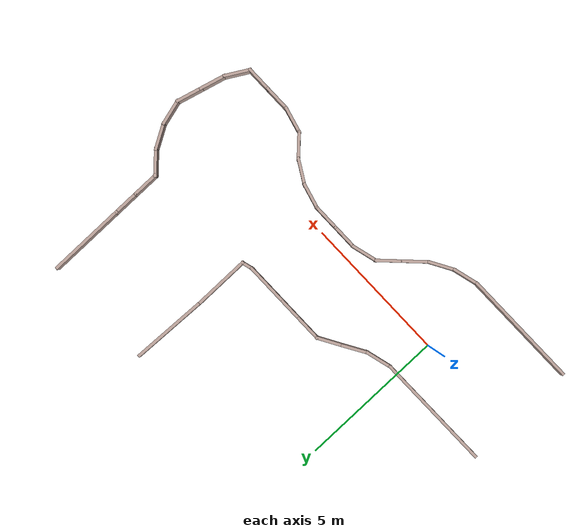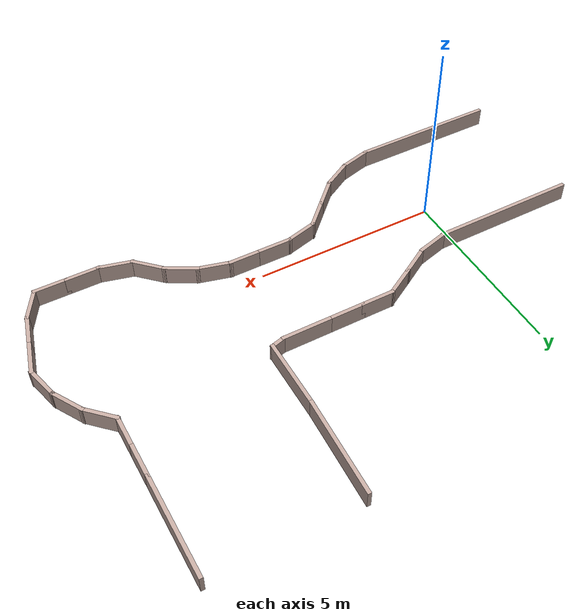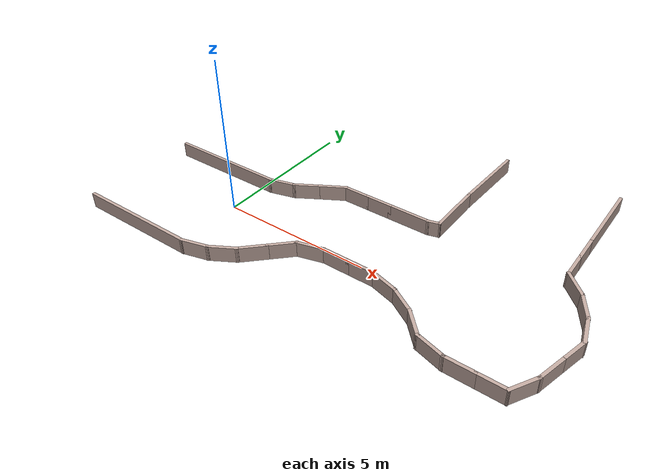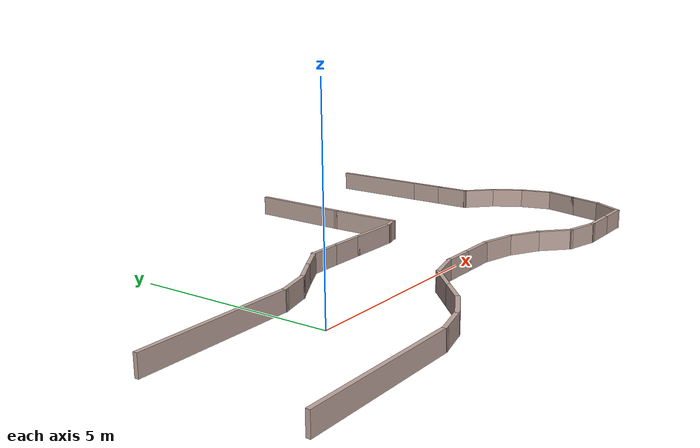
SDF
<?xml version='1.0'?>
<sdf version='1.7'>
  <model name='Autonomous'>
    <pose>3.83779 2.21924 0 0 -0 0</pose>
    <link name='Wall_0'>
      <collision name='Wall_0_Collision'>
        <geometry>
          <box>
            <size>4.0805 0.1 0.5</size>
          </box>
        </geometry>
        <pose>0 0 0.25 0 -0 0</pose>
      </collision>
      <visual name='Wall_0_Visual'>
        <pose>0 0 0.25 0 -0 0</pose>
        <geometry>
          <box>
            <size>4.0805 0.1 0.5</size>
          </box>
        </geometry>
        <material>
          <script>
            <uri>file://media/materials/scripts/gazebo.material</uri>
            <name>Gazebo/Grey</name>
          </script>
          <ambient>0.760784 0.662745 0.627451 1</ambient>
        </material>
        <meta>
          <layer>0</layer>
        </meta>
      </visual>
      <pose>-5.41802 -4.7193 0 0 -0 0.005053</pose>
    </link>
    <link name='Wall_10'>
      <collision name='Wall_10_Collision'>
        <geometry>
          <box>
            <size>0.95 0.1 0.5</size>
          </box>
        </geometry>
        <pose>0 0 0.25 0 -0 0</pose>
      </collision>
      <visual name='Wall_10_Visual'>
        <pose>0 0 0.25 0 -0 0</pose>
        <geometry>
          <box>
            <size>0.95 0.1 0.5</size>
          </box>
        </geometry>
        <material>
          <script>
            <uri>file://media/materials/scripts/gazebo.material</uri>
            <name>Gazebo/Grey</name>
          </script>
          <ambient>0.760784 0.662745 0.627451 1</ambient>
        </material>
        <meta>
          <layer>0</layer>
        </meta>
      </visual>
      <pose>1.42721 -2.64224 0 0 -0 0</pose>
    </link>
    <link name='Wall_11'>
      <collision name='Wall_11_Collision'>
        <geometry>
          <box>
            <size>0.950248 0.1 0.5</size>
          </box>
        </geometry>
        <pose>0 0 0.25 0 -0 0</pose>
      </collision>
      <visual name='Wall_11_Visual'>
        <pose>0 0 0.25 0 -0 0</pose>
        <geometry>
          <box>
            <size>0.950248 0.1 0.5</size>
          </box>
        </geometry>
        <material>
          <script>
            <uri>file://media/materials/scripts/gazebo.material</uri>
            <name>Gazebo/Grey</name>
          </script>
          <ambient>0.760784 0.662745 0.627451 1</ambient>
        </material>
        <meta>
          <layer>0</layer>
        </meta>
      </visual>
      <pose>2.26271 -2.75224 0 0 -0 -0.261815</pose>
    </link>
    <link name='Wall_12'>
      <collision name='Wall_12_Collision'>
        <geometry>
          <box>
            <size>0.950233 0.1 0.5</size>
          </box>
        </geometry>
        <pose>0 0 0.25 0 -0 0</pose>
      </collision>
      <visual name='Wall_12_Visual'>
        <pose>0 0 0.25 0 -0 0</pose>
        <geometry>
          <box>
            <size>0.950233 0.1 0.5</size>
          </box>
        </geometry>
        <material>
          <script>
            <uri>file://media/materials/scripts/gazebo.material</uri>
            <name>Gazebo/Grey</name>
          </script>
          <ambient>0.760784 0.662745 0.627451 1</ambient>
        </material>
        <meta>
          <layer>0</layer>
        </meta>
      </visual>
      <pose>3.04121 -3.07474 0 0 -0 -0.52367</pose>
    </link>
    <link name='Wall_13'>
      <collision name='Wall_13_Collision'>
        <geometry>
          <box>
            <size>0.950253 0.1 0.5</size>
          </box>
        </geometry>
        <pose>0 0 0.25 0 -0 0</pose>
      </collision>
      <visual name='Wall_13_Visual'>
        <pose>0 0 0.25 0 -0 0</pose>
        <geometry>
          <box>
            <size>0.950253 0.1 0.5</size>
          </box>
        </geometry>
        <material>
          <script>
            <uri>file://media/materials/scripts/gazebo.material</uri>
            <name>Gazebo/Grey</name>
          </script>
          <ambient>0.760784 0.662745 0.627451 1</ambient>
        </material>
        <meta>
          <layer>0</layer>
        </meta>
      </visual>
      <pose>3.70971 -3.58774 0 0 -0 -0.785398</pose>
    </link>
    <link name='Wall_14'>
      <collision name='Wall_14_Collision'>
        <geometry>
          <box>
            <size>0.970267 0.1 0.5</size>
          </box>
        </geometry>
        <pose>0 0 0.25 0 -0 0</pose>
      </collision>
      <visual name='Wall_14_Visual'>
        <pose>0 0 0.25 0 -0 0</pose>
        <geometry>
          <box>
            <size>0.970267 0.1 0.5</size>
          </box>
        </geometry>
        <material>
          <script>
            <uri>file://media/materials/scripts/gazebo.material</uri>
            <name>Gazebo/Grey</name>
          </script>
          <ambient>0.760784 0.662745 0.627451 1</ambient>
        </material>
        <meta>
          <layer>0</layer>
        </meta>
      </visual>
      <pose>4.43121 -3.99824 0 0 -0 -0.255569</pose>
    </link>
    <link name='Wall_15'>
      <collision name='Wall_15_Collision'>
        <geometry>
          <box>
            <size>0.949627 0.1 0.5</size>
          </box>
        </geometry>
        <pose>0 0 0.25 0 -0 0</pose>
      </collision>
      <visual name='Wall_15_Visual'>
        <pose>0 0 0.25 0 -0 0</pose>
        <geometry>
          <box>
            <size>0.949627 0.1 0.5</size>
          </box>
        </geometry>
        <material>
          <script>
            <uri>file://media/materials/scripts/gazebo.material</uri>
            <name>Gazebo/Grey</name>
          </script>
          <ambient>0.760784 0.662745 0.627451 1</ambient>
        </material>
        <meta>
          <layer>0</layer>
        </meta>
      </visual>
      <pose>5.27721 -4.10824 0 0 -0 0</pose>
    </link>
    <link name='Wall_16'>
      <collision name='Wall_16_Collision'>
        <geometry>
          <box>
            <size>0.929513 0.1 0.5</size>
          </box>
        </geometry>
        <pose>0 0 0.25 0 -0 0</pose>
      </collision>
      <visual name='Wall_16_Visual'>
        <pose>0 0 0.25 0 -0 0</pose>
        <geometry>
          <box>
            <size>0.929513 0.1 0.5</size>
          </box>
        </geometry>
        <material>
          <script>
            <uri>file://media/materials/scripts/gazebo.material</uri>
            <name>Gazebo/Grey</name>
          </script>
          <ambient>0.760784 0.662745 0.627451 1</ambient>
        </material>
        <meta>
          <layer>0</layer>
        </meta>
      </visual>
      <pose>6.11721 -4.10824 0 0 -0 0</pose>
    </link>
    <link name='Wall_18'>
      <collision name='Wall_18_Collision'>
        <geometry>
          <box>
            <size>0.949792 0.1 0.5</size>
          </box>
        </geometry>
        <pose>0 0 0.25 0 -0 0</pose>
      </collision>
      <visual name='Wall_18_Visual'>
        <pose>0 0 0.25 0 -0 0</pose>
        <geometry>
          <box>
            <size>0.949792 0.1 0.5</size>
          </box>
        </geometry>
        <material>
          <script>
            <uri>file://media/materials/scripts/gazebo.material</uri>
            <name>Gazebo/Grey</name>
          </script>
          <ambient>0.760784 0.662745 0.627451 1</ambient>
        </material>
        <meta>
          <layer>0</layer>
        </meta>
      </visual>
      <pose>6.74471 -3.74024 0 0 -0 1.04713</pose>
    </link>
    <link name='Wall_19'>
      <collision name='Wall_19_Collision'>
        <geometry>
          <box>
            <size>0.950031 0.1 0.5</size>
          </box>
        </geometry>
        <pose>0 0 0.25 0 -0 0</pose>
      </collision>
      <visual name='Wall_19_Visual'>
        <pose>0 0 0.25 0 -0 0</pose>
        <geometry>
          <box>
            <size>0.950031 0.1 0.5</size>
          </box>
        </geometry>
        <material>
          <script>
            <uri>file://media/materials/scripts/gazebo.material</uri>
            <name>Gazebo/Grey</name>
          </script>
          <ambient>0.760784 0.662745 0.627451 1</ambient>
        </material>
        <meta>
          <layer>0</layer>
        </meta>
      </visual>
      <pose>7.06721 -2.96174 0 0 -0 1.30898</pose>
    </link>
    <link name='Wall_20'>
      <collision name='Wall_20_Collision'>
        <geometry>
          <box>
            <size>0.950066 0.1 0.5</size>
          </box>
        </geometry>
        <pose>0 0 0.25 0 -0 0</pose>
      </collision>
      <visual name='Wall_20_Visual'>
        <pose>0 0 0.25 0 -0 0</pose>
        <geometry>
          <box>
            <size>0.950066 0.1 0.5</size>
          </box>
        </geometry>
        <material>
          <script>
            <uri>file://media/materials/scripts/gazebo.material</uri>
            <name>Gazebo/Grey</name>
          </script>
          <ambient>0.760784 0.662745 0.627451 1</ambient>
        </material>
        <meta>
          <layer>0</layer>
        </meta>
      </visual>
      <pose>7.28721 -2.14074 0 0 -0 1.30898</pose>
    </link>
    <link name='Wall_21'>
      <collision name='Wall_21_Collision'>
        <geometry>
          <box>
            <size>0.950356 0.1 0.5</size>
          </box>
        </geometry>
        <pose>0 0 0.25 0 -0 0</pose>
      </collision>
      <visual name='Wall_21_Visual'>
        <pose>0 0 0.25 0 -0 0</pose>
        <geometry>
          <box>
            <size>0.950356 0.1 0.5</size>
          </box>
        </geometry>
        <material>
          <script>
            <uri>file://media/materials/scripts/gazebo.material</uri>
            <name>Gazebo/Grey</name>
          </script>
          <ambient>0.760784 0.662745 0.627451 1</ambient>
        </material>
        <meta>
          <layer>0</layer>
        </meta>
      </visual>
      <pose>7.28721 -1.31974 0 0 -0 1.83261</pose>
    </link>
    <link name='Wall_22'>
      <collision name='Wall_22_Collision'>
        <geometry>
          <box>
            <size>0.950482 0.1 0.5</size>
          </box>
        </geometry>
        <pose>0 0 0.25 0 -0 0</pose>
      </collision>
      <visual name='Wall_22_Visual'>
        <pose>0 0 0.25 0 -0 0</pose>
        <geometry>
          <box>
            <size>0.950482 0.1 0.5</size>
          </box>
        </geometry>
        <material>
          <script>
            <uri>file://media/materials/scripts/gazebo.material</uri>
            <name>Gazebo/Grey</name>
          </script>
          <ambient>0.760784 0.662745 0.627451 1</ambient>
        </material>
        <meta>
          <layer>0</layer>
        </meta>
      </visual>
      <pose>6.96471 -0.54124 0 0 -0 2.09447</pose>
    </link>
    <link name='Wall_23'>
      <collision name='Wall_23_Collision'>
        <geometry>
          <box>
            <size>0.950626 0.1 0.5</size>
          </box>
        </geometry>
        <pose>0 0 0.25 0 -0 0</pose>
      </collision>
      <visual name='Wall_23_Visual'>
        <pose>0 0 0.25 0 -0 0</pose>
        <geometry>
          <box>
            <size>0.950626 0.1 0.5</size>
          </box>
        </geometry>
        <material>
          <script>
            <uri>file://media/materials/scripts/gazebo.material</uri>
            <name>Gazebo/Grey</name>
          </script>
          <ambient>0.760784 0.662745 0.627451 1</ambient>
        </material>
        <meta>
          <layer>0</layer>
        </meta>
      </visual>
      <pose>6.45121 0.12726 0 0 -0 2.35703</pose>
    </link>
    <link name='Wall_25'>
      <collision name='Wall_25_Collision'>
        <geometry>
          <box>
            <size>0.950436 0.1 0.5</size>
          </box>
        </geometry>
        <pose>0 0 0.25 0 -0 0</pose>
      </collision>
      <visual name='Wall_25_Visual'>
        <pose>0 0 0.25 0 -0 0</pose>
        <geometry>
          <box>
            <size>0.950436 0.1 0.5</size>
          </box>
        </geometry>
        <material>
          <script>
            <uri>file://media/materials/scripts/gazebo.material</uri>
            <name>Gazebo/Grey</name>
          </script>
          <ambient>0.760784 0.662745 0.627451 1</ambient>
        </material>
        <meta>
          <layer>0</layer>
        </meta>
      </visual>
      <pose>6.15021 0.85276 0 0 -0 1.5708</pose>
    </link>
    <link name='Wall_26'>
      <collision name='Wall_26_Collision'>
        <geometry>
          <box>
            <size>0.950436 0.1 0.5</size>
          </box>
        </geometry>
        <pose>0 0 0.25 0 -0 0</pose>
      </collision>
      <visual name='Wall_26_Visual'>
        <pose>0 0 0.25 0 -0 0</pose>
        <geometry>
          <box>
            <size>0.950436 0.1 0.5</size>
          </box>
        </geometry>
        <material>
          <script>
            <uri>file://media/materials/scripts/gazebo.material</uri>
            <name>Gazebo/Grey</name>
          </script>
          <ambient>0.760784 0.662745 0.627451 1</ambient>
        </material>
        <meta>
          <layer>0</layer>
        </meta>
      </visual>
      <pose>6.15021 1.70276 0 0 -0 1.5708</pose>
    </link>
    <link name='Wall_3'>
      <collision name='Wall_3_Collision'>
        <geometry>
          <box>
            <size>0.95 0.1 0.5</size>
          </box>
        </geometry>
        <pose>0 0 0.25 0 -0 0</pose>
      </collision>
      <visual name='Wall_3_Visual'>
        <pose>0 0 0.25 0 -0 0</pose>
        <geometry>
          <box>
            <size>0.95 0.1 0.5</size>
          </box>
        </geometry>
        <material>
          <script>
            <uri>file://media/materials/scripts/gazebo.material</uri>
            <name>Gazebo/Grey</name>
          </script>
          <ambient>0.760784 0.662745 0.627451 1</ambient>
        </material>
        <meta>
          <layer>0</layer>
        </meta>
      </visual>
      <pose>-3.01729 -4.59924 0 0 -0 0.261815</pose>
    </link>
    <link name='Wall_31'>
      <collision name='Wall_31_Collision'>
        <geometry>
          <box>
            <size>4.05051 0.1 0.5</size>
          </box>
        </geometry>
        <pose>0 0 0.25 0 -0 0</pose>
      </collision>
      <visual name='Wall_31_Visual'>
        <pose>0 0 0.25 0 -0 0</pose>
        <geometry>
          <box>
            <size>4.05051 0.1 0.5</size>
          </box>
        </geometry>
        <material>
          <script>
            <uri>file://media/materials/scripts/gazebo.material</uri>
            <name>Gazebo/Grey</name>
          </script>
          <ambient>0.760784 0.662745 0.627451 1</ambient>
        </material>
        <meta>
          <layer>0</layer>
        </meta>
      </visual>
      <pose>-5.43302 -0.869297 0 0 -0 0.005091</pose>
    </link>
    <link name='Wall_32'>
      <collision name='Wall_32_Collision'>
        <geometry>
          <box>
            <size>0.950075 0.1 0.5</size>
          </box>
        </geometry>
        <pose>0 0 0.25 0 -0 0</pose>
      </collision>
      <visual name='Wall_32_Visual'>
        <pose>0 0 0.25 0 -0 0</pose>
        <geometry>
          <box>
            <size>0.950075 0.1 0.5</size>
          </box>
        </geometry>
        <material>
          <script>
            <uri>file://media/materials/scripts/gazebo.material</uri>
            <name>Gazebo/Grey</name>
          </script>
          <ambient>0.760784 0.662745 0.627451 1</ambient>
        </material>
        <meta>
          <layer>0</layer>
        </meta>
      </visual>
      <pose>-3.04729 -0.74924 0 0 -0 0.261815</pose>
    </link>
    <link name='Wall_33'>
      <collision name='Wall_33_Collision'>
        <geometry>
          <box>
            <size>0.932635 0.1 0.5</size>
          </box>
        </geometry>
        <pose>0 0 0.25 0 -0 0</pose>
      </collision>
      <visual name='Wall_33_Visual'>
        <pose>0 0 0.25 0 -0 0</pose>
        <geometry>
          <box>
            <size>0.932635 0.1 0.5</size>
          </box>
        </geometry>
        <material>
          <script>
            <uri>file://media/materials/scripts/gazebo.material</uri>
            <name>Gazebo/Grey</name>
          </script>
          <ambient>0.760784 0.662745 0.627451 1</ambient>
        </material>
        <meta>
          <layer>0</layer>
        </meta>
      </visual>
      <pose>-2.27879 -0.42674 0 0 -0 0.535682</pose>
    </link>
    <link name='Wall_34'>
      <collision name='Wall_34_Collision'>
        <geometry>
          <box>
            <size>0.949895 0.1 0.5</size>
          </box>
        </geometry>
        <pose>0 0 0.25 0 -0 0</pose>
      </collision>
      <visual name='Wall_34_Visual'>
        <pose>0 0 0.25 0 -0 0</pose>
        <geometry>
          <box>
            <size>0.949895 0.1 0.5</size>
          </box>
        </geometry>
        <material>
          <script>
            <uri>file://media/materials/scripts/gazebo.material</uri>
            <name>Gazebo/Grey</name>
          </script>
          <ambient>0.760784 0.662745 0.627451 1</ambient>
        </material>
        <meta>
          <layer>0</layer>
        </meta>
      </visual>
      <pose>-1.55279 -0.00174 0 0 -0 0.52367</pose>
    </link>
    <link name='Wall_35'>
      <collision name='Wall_35_Collision'>
        <geometry>
          <box>
            <size>0.95 0.1 0.5</size>
          </box>
        </geometry>
        <pose>0 0 0.25 0 -0 0</pose>
      </collision>
      <visual name='Wall_35_Visual'>
        <pose>0 0 0.25 0 -0 0</pose>
        <geometry>
          <box>
            <size>0.95 0.1 0.5</size>
          </box>
        </geometry>
        <material>
          <script>
            <uri>file://media/materials/scripts/gazebo.material</uri>
            <name>Gazebo/Grey</name>
          </script>
          <ambient>0.760784 0.662745 0.627451 1</ambient>
        </material>
        <meta>
          <layer>0</layer>
        </meta>
      </visual>
      <pose>-0.75979 0.21076 0 0 -0 0</pose>
    </link>
    <link name='Wall_36'>
      <collision name='Wall_36_Collision'>
        <geometry>
          <box>
            <size>0.95 0.1 0.5</size>
          </box>
        </geometry>
        <pose>0 0 0.25 0 -0 0</pose>
      </collision>
      <visual name='Wall_36_Visual'>
        <pose>0 0 0.25 0 -0 0</pose>
        <geometry>
          <box>
            <size>0.95 0.1 0.5</size>
          </box>
        </geometry>
        <material>
          <script>
            <uri>file://media/materials/scripts/gazebo.material</uri>
            <name>Gazebo/Grey</name>
          </script>
          <ambient>0.760784 0.662745 0.627451 1</ambient>
        </material>
        <meta>
          <layer>0</layer>
        </meta>
      </visual>
      <pose>0.09021 0.21076 0 0 -0 0</pose>
    </link>
    <link name='Wall_4'>
      <collision name='Wall_4_Collision'>
        <geometry>
          <box>
            <size>0.95003 0.1 0.5</size>
          </box>
        </geometry>
        <pose>0 0 0.25 0 -0 0</pose>
      </collision>
      <visual name='Wall_4_Visual'>
        <pose>0 0 0.25 0 -0 0</pose>
        <geometry>
          <box>
            <size>0.95003 0.1 0.5</size>
          </box>
        </geometry>
        <material>
          <script>
            <uri>file://media/materials/scripts/gazebo.material</uri>
            <name>Gazebo/Grey</name>
          </script>
          <ambient>0.760784 0.662745 0.627451 1</ambient>
        </material>
        <meta>
          <layer>0</layer>
        </meta>
      </visual>
      <pose>-2.23879 -4.27674 0 0 -0 0.52367</pose>
    </link>
    <link name='Wall_42'>
      <collision name='Wall_42_Collision'>
        <geometry>
          <box>
            <size>1.45 0.1 0.5</size>
          </box>
        </geometry>
        <pose>0 0 0.25 0 -0 0</pose>
      </collision>
      <visual name='Wall_42_Visual'>
        <pose>0 0 0.25 0 -0 0</pose>
        <geometry>
          <box>
            <size>1.45 0.1 0.5</size>
          </box>
        </geometry>
        <material>
          <script>
            <uri>file://media/materials/scripts/gazebo.material</uri>
            <name>Gazebo/Grey</name>
          </script>
          <ambient>0.760784 0.662745 0.627451 1</ambient>
        </material>
        <meta>
          <layer>0</layer>
        </meta>
      </visual>
      <pose>1.19021 0.21076 0 0 -0 0</pose>
    </link>
    <link name='Wall_45'>
      <collision name='Wall_45_Collision'>
        <geometry>
          <box>
            <size>0.450036 0.1 0.5</size>
          </box>
        </geometry>
        <pose>0 0 0.25 0 -0 0</pose>
      </collision>
      <visual name='Wall_45_Visual'>
        <pose>0 0 0.25 0 -0 0</pose>
        <geometry>
          <box>
            <size>0.450036 0.1 0.5</size>
          </box>
        </geometry>
        <material>
          <script>
            <uri>file://media/materials/scripts/gazebo.material</uri>
            <name>Gazebo/Grey</name>
          </script>
          <ambient>0.760784 0.662745 0.627451 1</ambient>
        </material>
        <meta>
          <layer>0</layer>
        </meta>
      </visual>
      <pose>2.03421 0.25626 0 0 -0 0.262995</pose>
    </link>
    <link name='Wall_46'>
      <collision name='Wall_46_Collision'>
        <geometry>
          <box>
            <size>1.94958 0.1 0.5</size>
          </box>
        </geometry>
        <pose>0 0 0.25 0 -0 0</pose>
      </collision>
      <visual name='Wall_46_Visual'>
        <pose>0 0 0.25 0 -0 0</pose>
        <geometry>
          <box>
            <size>1.94958 0.1 0.5</size>
          </box>
        </geometry>
        <material>
          <script>
            <uri>file://media/materials/scripts/gazebo.material</uri>
            <name>Gazebo/Grey</name>
          </script>
          <ambient>0.760784 0.662745 0.627451 1</ambient>
        </material>
        <meta>
          <layer>0</layer>
        </meta>
      </visual>
      <pose>2.20321 1.22676 0 0 -0 1.5708</pose>
    </link>
    <link name='Wall_48'>
      <collision name='Wall_48_Collision'>
        <geometry>
          <box>
            <size>2.7 0.1 0.5</size>
          </box>
        </geometry>
        <pose>0 0 0.25 0 -0 0</pose>
      </collision>
      <visual name='Wall_48_Visual'>
        <pose>0 0 0.25 0 -0 0</pose>
        <geometry>
          <box>
            <size>2.7 0.1 0.5</size>
          </box>
        </geometry>
        <material>
          <script>
            <uri>file://media/materials/scripts/gazebo.material</uri>
            <name>Gazebo/Grey</name>
          </script>
          <ambient>0.760784 0.662745 0.627451 1</ambient>
        </material>
        <meta>
          <layer>0</layer>
        </meta>
      </visual>
      <pose>6.15021 3.42776 0 0 -0 1.5708</pose>
    </link>
    <link name='Wall_5'>
      <collision name='Wall_5_Collision'>
        <geometry>
          <box>
            <size>0.950109 0.1 0.5</size>
          </box>
        </geometry>
        <pose>0 0 0.25 0 -0 0</pose>
      </collision>
      <visual name='Wall_5_Visual'>
        <pose>0 0 0.25 0 -0 0</pose>
        <geometry>
          <box>
            <size>0.950109 0.1 0.5</size>
          </box>
        </geometry>
        <material>
          <script>
            <uri>file://media/materials/scripts/gazebo.material</uri>
            <name>Gazebo/Grey</name>
          </script>
          <ambient>0.760784 0.662745 0.627451 1</ambient>
        </material>
        <meta>
          <layer>0</layer>
        </meta>
      </visual>
      <pose>-1.57029 -3.76374 0 0 -0 0.785398</pose>
    </link>
    <link name='Wall_54'>
      <collision name='Wall_54_Collision'>
        <geometry>
          <box>
            <size>2.67783 0.1 0.5</size>
          </box>
        </geometry>
        <pose>0 0 0.25 0 -0 0</pose>
      </collision>
      <visual name='Wall_54_Visual'>
        <pose>0 0 0.25 0 -0 0</pose>
        <geometry>
          <box>
            <size>2.67783 0.1 0.5</size>
          </box>
        </geometry>
        <material>
          <script>
            <uri>file://media/materials/scripts/gazebo.material</uri>
            <name>Gazebo/Grey</name>
          </script>
          <ambient>0.760784 0.662745 0.627451 1</ambient>
        </material>
        <meta>
          <layer>0</layer>
        </meta>
      </visual>
      <pose>2.25171 3.43976 0 0 -0 -1.60843</pose>
    </link>
    <link name='Wall_6'>
      <collision name='Wall_6_Collision'>
        <geometry>
          <box>
            <size>0.950167 0.1 0.5</size>
          </box>
        </geometry>
        <pose>0 0 0.25 0 -0 0</pose>
      </collision>
      <visual name='Wall_6_Visual'>
        <pose>0 0 0.25 0 -0 0</pose>
        <geometry>
          <box>
            <size>0.950167 0.1 0.5</size>
          </box>
        </geometry>
        <material>
          <script>
            <uri>file://media/materials/scripts/gazebo.material</uri>
            <name>Gazebo/Grey</name>
          </script>
          <ambient>0.760784 0.662745 0.627451 1</ambient>
        </material>
        <meta>
          <layer>0</layer>
        </meta>
      </visual>
      <pose>-0.96929 -3.16274 0 0 -0 0.785398</pose>
    </link>
    <link name='Wall_7'>
      <collision name='Wall_7_Collision'>
        <geometry>
          <box>
            <size>0.950252 0.1 0.5</size>
          </box>
        </geometry>
        <pose>0 0 0.25 0 -0 0</pose>
      </collision>
      <visual name='Wall_7_Visual'>
        <pose>0 0 0.25 0 -0 0</pose>
        <geometry>
          <box>
            <size>0.950252 0.1 0.5</size>
          </box>
        </geometry>
        <material>
          <script>
            <uri>file://media/materials/scripts/gazebo.material</uri>
            <name>Gazebo/Grey</name>
          </script>
          <ambient>0.760784 0.662745 0.627451 1</ambient>
        </material>
        <meta>
          <layer>0</layer>
        </meta>
      </visual>
      <pose>-0.25829 -2.75224 0 0 -0 0.261815</pose>
    </link>
    <link name='Wall_8'>
      <collision name='Wall_8_Collision'>
        <geometry>
          <box>
            <size>0.950277 0.1 0.5</size>
          </box>
        </geometry>
        <pose>0 0 0.25 0 -0 0</pose>
      </collision>
      <visual name='Wall_8_Visual'>
        <pose>0 0 0.25 0 -0 0</pose>
        <geometry>
          <box>
            <size>0.950277 0.1 0.5</size>
          </box>
        </geometry>
        <material>
          <script>
            <uri>file://media/materials/scripts/gazebo.material</uri>
            <name>Gazebo/Grey</name>
          </script>
          <ambient>0.760784 0.662745 0.627451 1</ambient>
        </material>
        <meta>
          <layer>0</layer>
        </meta>
      </visual>
      <pose>0.57721 -2.64224 0 0 -0 0</pose>
    </link>
    <static>1</static>
  </model>
</sdf>
